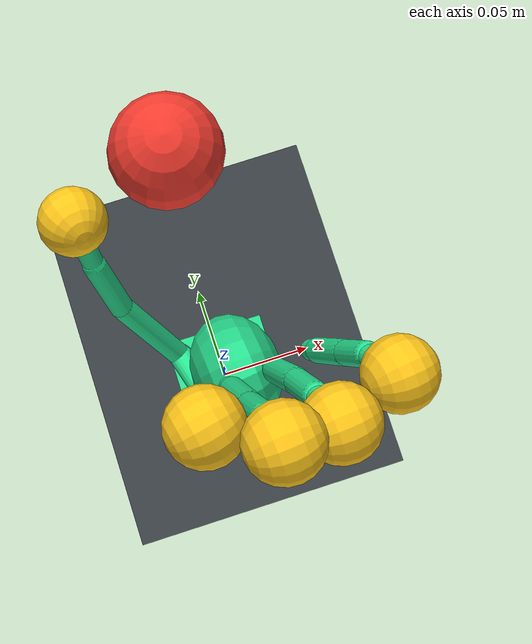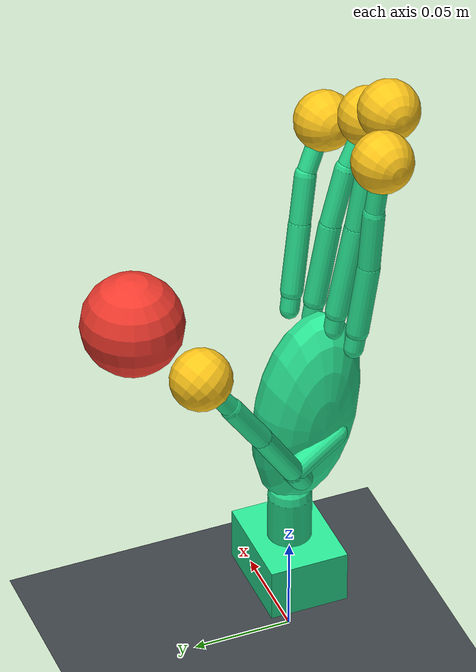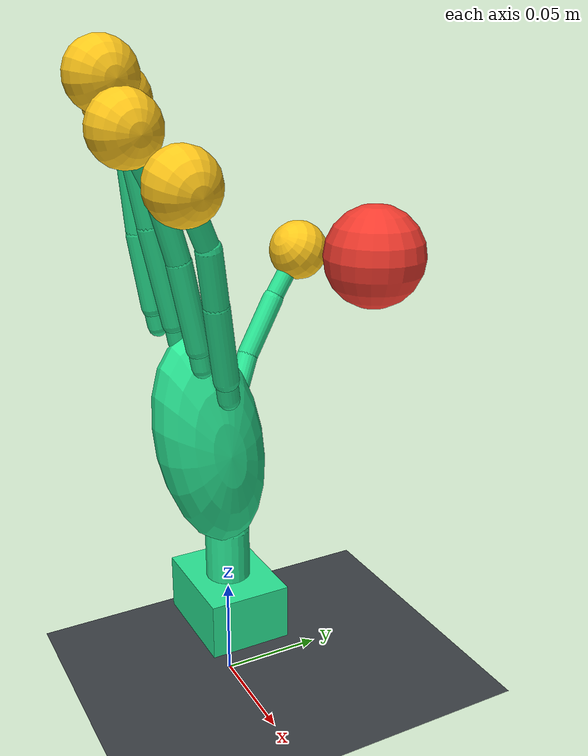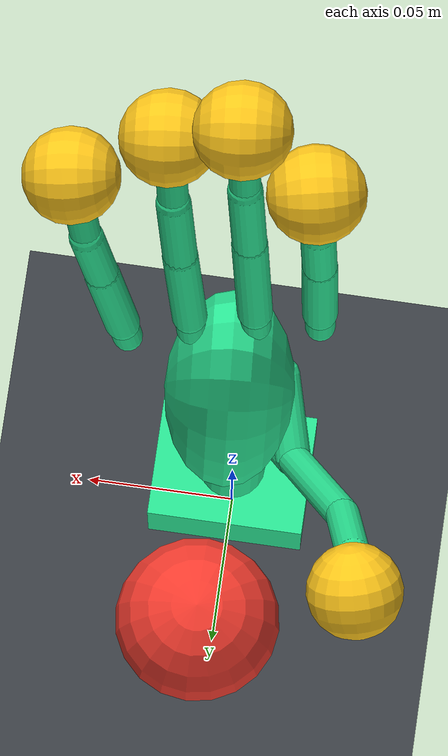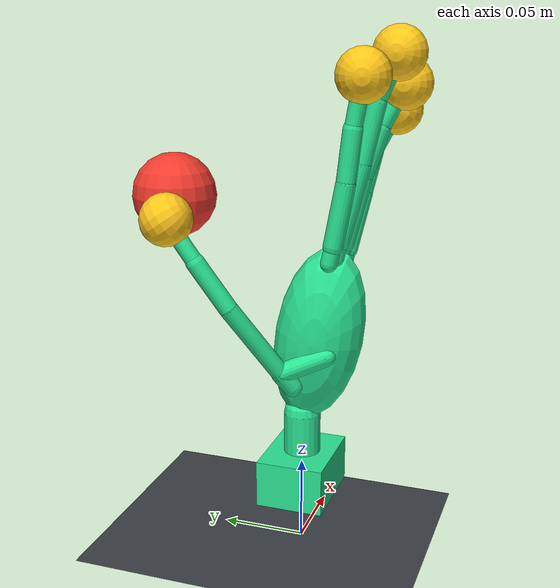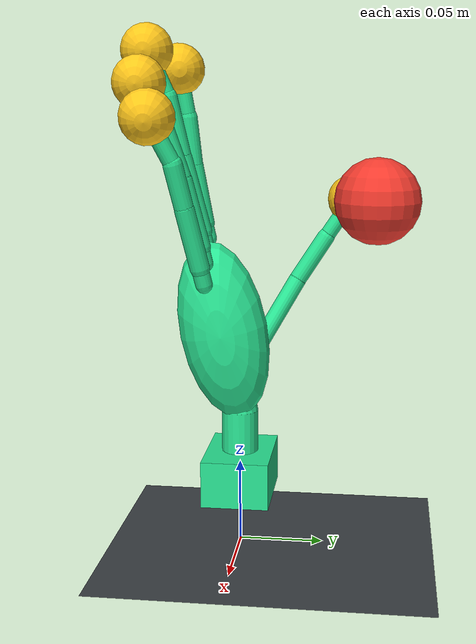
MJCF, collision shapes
<?xml version="1.0" encoding="utf-8"?>
<mujoco model="hand_stage1_export4_palmar_ypos_collision_candidate_scene">
  <include file="hand_stage1_export4_palmar_ypos_collision_candidate.xml"/>
  <visual>
    <global azimuth="145" elevation="-25" offwidth="1280" offheight="900"/>
  </visual>
  <asset>
    <texture type="2d" name="palmar_ypos_candidate_ground_checker" builtin="checker"
      rgb1="0.18 0.20 0.22" rgb2="0.28 0.30 0.32" width="300" height="300"/>
    <material name="palmar_ypos_candidate_ground_mat" texture="palmar_ypos_candidate_ground_checker"
      texrepeat="4 4" reflectance="0.15"/>
  </asset>
  <worldbody>
    <light pos="0 -0.3 0.8" dir="0 0 -1" directional="true"/>
    <geom name="ground" type="plane" pos="0 0 0" size="0.4 0.4 0.02"
      material="palmar_ypos_candidate_ground_mat" contype="1" conaffinity="3"/>
    <body name="ball" pos="0.0 0.08 0.21">
      <freejoint name="ball_freejoint"/>
      <geom name="ball_geom" type="sphere" size="0.025" rgba="0.95 0.23 0.18 1"
        mass="0.03" friction="0.8 0.05 0.001" condim="3" contype="2" conaffinity="1"/>
    </body>
  </worldbody>
</mujoco>

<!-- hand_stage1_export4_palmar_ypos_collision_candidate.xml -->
<mujoco model="hand_stage1_export4_palmar_ypos_collision_candidate">
  <compiler angle="radian" meshdir="../meshes_export4" autolimits="true" />
  <option timestep="0.002" gravity="0 0 -9.81" />
  <visual>
    <global azimuth="145" elevation="-25" offwidth="1280" offheight="900" />
  </visual>
  <default>
    <joint damping="0.08" armature="0.0001" />
    <geom solref="0.01 1" solimp="0.9 0.95 0.001" />
  </default>
  <statistic center="0.005 0.02 0.18" extent="0.24" />
  <asset>
    <mesh name="hand_base_link_mesh" file="hand_base_link.STL" scale="1 1 1" />
    <mesh name="wrist_middle_link_mesh" file="wrist_middle_link.STL" scale="1 1 1" />
    <mesh name="palm_link_mesh" file="palm_link.STL" scale="1 1 1" />
    <mesh name="index_mcp_flex_link_mesh" file="index_mcp_flex_link.STL" scale="1 1 1" />
    <mesh name="index_proximal_phalanx_link_mesh" file="index_proximal_phalanx_link.STL" scale="1 1 1" />
    <mesh name="index_proximal_inter_link_mesh" file="index_proximal_inter_link.STL" scale="1 1 1" />
    <mesh name="index_distal_link_mesh" file="index_distal_link.STL" scale="1 1 1" />
    <mesh name="middle_mcp_flex_link_mesh" file="middle_mcp_flex_link.STL" scale="1 1 1" />
    <mesh name="middle_proximal_phalanx_link_mesh" file="middle_proximal_phalanx_link.STL" scale="1 1 1" />
    <mesh name="middle_proximal_inter_link_mesh" file="middle_proximal_inter_link.STL" scale="1 1 1" />
    <mesh name="middle_distal_link_mesh" file="middle_distal_link.STL" scale="1 1 1" />
    <mesh name="ring_mcp_flex_link_mesh" file="ring_mcp_flex_link.STL" scale="1 1 1" />
    <mesh name="ring_proximal_phalanx_link_mesh" file="ring_proximal_phalanx_link.STL" scale="1 1 1" />
    <mesh name="ring_proximal_inter_link_mesh" file="ring_proximal_inter_link.STL" scale="1 1 1" />
    <mesh name="ring_distal_link_mesh" file="ring_distal_link.STL" scale="1 1 1" />
    <mesh name="little_mcp_flex_link_mesh" file="little_mcp_flex_link.STL" scale="1 1 1" />
    <mesh name="little_proximal_phalanx_link_mesh" file="little_proximal_phalanx_link.STL" scale="1 1 1" />
    <mesh name="little_proximal_inter_link_mesh" file="little_proximal_inter_link.STL" scale="1 1 1" />
    <mesh name="little_distal_link_mesh" file="little_distal_link.STL" scale="1 1 1" />
    <mesh name="thumb_root_connector_link_mesh" file="thumb_root_connector_link.STL" scale="1 1 1" />
    <mesh name="thumb_trapezium1_link_mesh" file="thumb_trapezium1_link.STL" scale="1 1 1" />
    <mesh name="thumb_metacarpal_link_mesh" file="thumb_metacarpal_link.STL" scale="1 1 1" />
    <mesh name="thumb_proximal_link_mesh" file="thumb_proximal_link.STL" scale="1 1 1" />
    <mesh name="thumb_distal_link_mesh" file="thumb_distal_link.STL" scale="1 1 1" />
  </asset>
  <worldbody>
    <body name="hand_base_link" pos="0 0 0.05">
      <inertial pos="0 0 0" mass="0.012576523" diaginertia="1e-5 1e-5 1e-5" />
      <geom name="hand_base_link_export4_visual" type="mesh" mesh="hand_base_link_mesh" pos="0 0 0" quat="1 0 0 0" rgba="0.792156862745098 0.819607843137255 0.933333333333333 1" contype="0" conaffinity="0" group="2" />
      <geom name="hand_base_link_collision_proxy" type="box" pos="0 0 -0.006" size="0.026 0.020 0.014" rgba="0.16 0.90 0.58 0.34" contype="1" conaffinity="2" group="3" />
      <body name="wrist_middle_link" pos="0 0 0.015" quat="0.021734468 0.031497148 -0.70640493 -0.70677267">
        <joint name="wrist_1_joint" type="hinge" axis="0 0 -1" limited="true" range="-0.8 0.8" damping="0.08" armature="0.0001" />
        <inertial pos="0 0 0" mass="0.010062493" diaginertia="1e-5 1e-5 1e-5" />
        <geom name="wrist_middle_link_export4_visual" type="mesh" mesh="wrist_middle_link_mesh" pos="0 0 0" quat="1 0 0 0" rgba="0.792156862745098 0.819607843137255 0.933333333333333 1" contype="0" conaffinity="0" group="2" />
        <geom name="wrist_middle_link_collision_proxy" type="capsule" fromto="0 -0.018 0 0 0.018 0" size="0.011" rgba="0.16 0.90 0.58 0.34" contype="1" conaffinity="2" group="3" />
        <body name="palm_link" pos="-0.0008 0.020263937 -0.0007" quat="0.7042091 -0.063949537 -0.7042091 0.063949537">
          <joint name="wrist_2_joint" type="hinge" axis="0 0 -1" limited="true" range="-0.8 0.8" damping="0.08" armature="0.0001" />
          <inertial pos="0 0 0" mass="0.14137095" diaginertia="1e-5 1e-5 1e-5" />
          <geom name="palm_link_export4_visual" type="mesh" mesh="palm_link_mesh" pos="0 0 0" quat="1 0 0 0" rgba="0.792156862745098 0.819607843137255 0.933333333333333 1" contype="0" conaffinity="0" group="2" />
          <geom name="palm_link_collision_proxy_ellipsoid" type="ellipsoid" pos="0 0.048 0.002" size="0.026 0.054 0.021" rgba="0.16 0.90 0.58 0.30" contype="1" conaffinity="2" group="3" friction="0.9 0.04 0.001" />
          <body name="index_mcp_flex_link" pos="-0.0014332629 0.1003371 -0.024802645" quat="0.70710678 0 0.70710678 0">
            <joint name="index_mcp_flex_joint" type="hinge" axis="0 0 -1" limited="true" range="-0.3 0.18" damping="0.08" armature="0.0001" />
            <inertial pos="0 0 0" mass="0.0017548052" diaginertia="1e-5 1e-5 1e-5" />
            <geom name="index_mcp_flex_link_export4_visual" type="mesh" mesh="index_mcp_flex_link_mesh" pos="0 0 0" quat="1 0 0 0" rgba="0.792156862745098 0.819607843137255 0.933333333333333 1" contype="0" conaffinity="0" group="2" />
            <geom name="index_mcp_flex_link_collision_proxy" type="capsule" fromto="0 0 0 -0.00051676254 0.0097416976 -0.00026673708" size="0.0048" rgba="0.16 0.90 0.58 0.34" contype="1" conaffinity="2" group="3" friction="0.9 0.04 0.001" />
            <body name="index_proximal_phalanx_link" pos="-0.00051676254 0.0097416976 -0.00026673708" quat="0.70685854 -0.018735 0.70685854 0.018735">
              <joint name="index_mcp_abd_joint" type="hinge" axis="0 0 -1" limited="true" range="-0.78 0.08" damping="0.08" armature="0.0001" />
              <inertial pos="0 0 0" mass="0.0070310696" diaginertia="1e-5 1e-5 1e-5" />
              <geom name="index_proximal_phalanx_link_export4_visual" type="mesh" mesh="index_proximal_phalanx_link_mesh" pos="0 0 0" quat="1 0 0 0" rgba="0.792156862745098 0.819607843137255 0.933333333333333 1" contype="0" conaffinity="0" group="2" />
              <geom name="index_proximal_phalanx_link_collision_proxy" type="capsule" fromto="0 0 0 -0.00021096449 0.034999364 0.00025" size="0.0056" rgba="0.16 0.90 0.58 0.34" contype="1" conaffinity="2" group="3" friction="0.9 0.04 0.001" />
              <body name="index_proximal_inter_link" pos="-0.00021096449 0.034999364 0.00025" quat="0.97605087 0.012185394 0.058843732 0.20907807">
                <joint name="index_pip_joint" type="hinge" axis="0.109773553624728 -0.0483929965230635 -0.992777862772996" limited="true" range="-1.1 0.04" damping="0.08" armature="0.0001" />
                <inertial pos="0 0 0" mass="0.0059704873" diaginertia="1e-5 1e-5 1e-5" />
                <geom name="index_proximal_inter_link_export4_visual" type="mesh" mesh="index_proximal_inter_link_mesh" pos="0 0 0" quat="1 0 0 0" rgba="0.792156862745098 0.819607843137255 0.933333333333333 1" contype="0" conaffinity="0" group="2" />
                <geom name="index_proximal_inter_link_collision_proxy" type="capsule" fromto="0 0 0 0.0097266332 0.027252107 -0.00045436552" size="0.0054" rgba="0.16 0.90 0.58 0.34" contype="1" conaffinity="2" group="3" friction="0.9 0.04 0.001" />
                <body name="index_distal_link" pos="0.0097266332 0.027252107 -0.00045436552" quat="1 0 0 0">
                  <joint name="index_dip_joint" type="hinge" axis="0 0 -1" limited="true" range="-0.66 0.04" damping="0.08" armature="0.0001" />
                  <inertial pos="0 0 0" mass="0.0053528415" diaginertia="1e-5 1e-5 1e-5" />
                  <geom name="index_distal_link_export4_visual" type="mesh" mesh="index_distal_link_mesh" pos="0 0 0" quat="1 0 0 0" rgba="0.792156862745098 0.819607843137255 0.933333333333333 1" contype="0" conaffinity="0" group="2" />
                  <geom name="index_distal_link_collision_proxy" type="capsule" fromto="0 0 0 0.011092007 0.025709199 -6.7060969e-05" size="0.0048" rgba="0.16 0.90 0.58 0.34" contype="1" conaffinity="2" group="3" friction="0.9 0.04 0.001" />
                  <geom name="index_tip_collision_proxy_sphere" type="sphere" pos="0.011092007 0.025709199 -6.7060969e-05" size="0.015000" rgba="1.0 0.78 0.10 0.42" contype="1" conaffinity="2" group="3" friction="0.9 0.04 0.001" />
                  <site name="index_tip_site" pos="0.011092007 0.025709199 -6.7060969e-05" size="0.008" rgba="0.10 0.55 1.0 1" type="sphere" />
                </body>
              </body>
            </body>
          </body>
          <body name="little_mcp_flex_link" pos="-0.0014332629 0.082348214 0.035197355" quat="0.70710678 0 0.70710678 0">
            <joint name="little_mcp_flex_joint" type="hinge" axis="0 0 -1" limited="true" range="-0.28 0.16" damping="0.08" armature="0.0001" />
            <inertial pos="0 0 0" mass="0.0017548056" diaginertia="1e-5 1e-5 1e-5" />
            <geom name="little_mcp_flex_link_export4_visual" type="mesh" mesh="little_mcp_flex_link_mesh" pos="0 0 0" quat="1 0 0 0" rgba="0.792156862745098 0.819607843137255 0.933333333333333 1" contype="0" conaffinity="0" group="2" />
            <geom name="little_mcp_flex_link_collision_proxy" type="capsule" fromto="0 0 0 -0.0018088145 0.0095862352 -0.00026673708" size="0.0048" rgba="0.16 0.90 0.58 0.34" contype="1" conaffinity="2" group="3" friction="0.9 0.04 0.001" />
            <body name="little_proximal_phalanx_link" pos="-0.0018088145 0.0095862352 -0.00026673708" quat="0.4512713 0.4512713 0.54438425 0.54438425">
              <joint name="little_mcp_abd_joint" type="hinge" axis="0 0 -1" limited="true" range="-0.76 0.08" damping="0.08" armature="0.0001" />
              <inertial pos="0 0 0" mass="0.0070532455" diaginertia="1e-5 1e-5 1e-5" />
              <geom name="little_proximal_phalanx_link_export4_visual" type="mesh" mesh="little_proximal_phalanx_link_mesh" pos="0 0 0" quat="1 0 0 0" rgba="0.792156862745098 0.819607843137255 0.933333333333333 1" contype="0" conaffinity="0" group="2" />
              <geom name="little_proximal_phalanx_link_collision_proxy" type="capsule" fromto="0 0 0 0.034983 -0.0010805 -0.0003" size="0.0056" rgba="0.16 0.90 0.58 0.34" contype="1" conaffinity="2" group="3" friction="0.9 0.04 0.001" />
              <body name="little_proximal_inter_link" pos="0.034983 -0.0010805 -0.0003" quat="0.70710548 0 0 -0.70710808">
                <joint name="little_pip_joint" type="hinge" axis="0 0 -1" limited="true" range="-1 0.04" damping="0.08" armature="0.0001" />
                <inertial pos="0 0 0" mass="0.0050879458" diaginertia="1e-5 1e-5 1e-5" />
                <geom name="little_proximal_inter_link_export4_visual" type="mesh" mesh="little_proximal_inter_link_mesh" pos="0 0 0" quat="1 0 0 0" rgba="0.792156862745098 0.819607843137255 0.933333333333333 1" contype="0" conaffinity="0" group="2" />
                <geom name="little_proximal_inter_link_collision_proxy" type="capsule" fromto="0 0 0 0.00077177 0.024988 -0.0002" size="0.0054" rgba="0.16 0.90 0.58 0.34" contype="1" conaffinity="2" group="3" friction="0.9 0.04 0.001" />
                <body name="little_distal_link" pos="0.00077177 0.024988 -0.0002" quat="0.70710548 0 0 0.70710808">
                  <joint name="little_dip_joint" type="hinge" axis="0 0 -1" limited="true" range="-0.62 0.04" damping="0.08" armature="0.0001" />
                  <inertial pos="0 0 0" mass="0.0053522317" diaginertia="1e-5 1e-5 1e-5" />
                  <geom name="little_distal_link_export4_visual" type="mesh" mesh="little_distal_link_mesh" pos="0 0 0" quat="1 0 0 0" rgba="0.792156862745098 0.819607843137255 0.933333333333333 1" contype="0" conaffinity="0" group="2" />
                  <geom name="little_distal_link_collision_proxy" type="capsule" fromto="0 0 0 0.026961146 -0.0075560895 -4.619485e-05" size="0.0048" rgba="0.16 0.90 0.58 0.34" contype="1" conaffinity="2" group="3" friction="0.9 0.04 0.001" />
                  <geom name="little_tip_collision_proxy_sphere" type="sphere" pos="0.026961146 -0.0075560895 -4.619485e-05" size="0.015000" rgba="1.0 0.78 0.10 0.42" contype="1" conaffinity="2" group="3" friction="0.9 0.04 0.001" />
                  <site name="little_tip_site" pos="0.026961146 -0.0075560895 -4.619485e-05" size="0.008" rgba="0.10 0.55 1.0 1" type="sphere" />
                </body>
              </body>
            </body>
          </body>
          <body name="middle_mcp_flex_link" pos="-0.0014332629 0.097567248 -0.0048026451" quat="0.70710678 0 0.70710678 0">
            <joint name="middle_mcp_flex_joint" type="hinge" axis="0 0 -1" limited="true" range="-0.3 0.18" damping="0.08" armature="0.0001" />
            <inertial pos="0 0 0" mass="0.0017548053" diaginertia="1e-5 1e-5 1e-5" />
            <geom name="middle_mcp_flex_link_export4_visual" type="mesh" mesh="middle_mcp_flex_link_mesh" pos="0 0 0" quat="1 0 0 0" rgba="0.792156862745098 0.819607843137255 0.933333333333333 1" contype="0" conaffinity="0" group="2" />
            <geom name="middle_mcp_flex_link_collision_proxy" type="capsule" fromto="0 0 0 -0.00064254397 0.0097342104 -0.00026673708" size="0.0048" rgba="0.16 0.90 0.58 0.34" contype="1" conaffinity="2" group="3" friction="0.9 0.04 0.001" />
            <body name="middle_proximal_phalanx_link" pos="-0.00064254397 0.0097342104 -0.00026673708" quat="0.48325317 0.48325317 0.51620381 0.51620381">
              <joint name="middle_mcp_abd_joint" type="hinge" axis="0 0 -1" limited="true" range="-0.86 0.08" damping="0.08" armature="0.0001" />
              <inertial pos="0 0 0" mass="0.0090532579" diaginertia="1e-5 1e-5 1e-5" />
              <geom name="middle_proximal_phalanx_link_export4_visual" type="mesh" mesh="middle_proximal_phalanx_link_mesh" pos="0 0 0" quat="1 0 0 0" rgba="0.792156862745098 0.819607843137255 0.933333333333333 1" contype="0" conaffinity="0" group="2" />
              <geom name="middle_proximal_phalanx_link_collision_proxy" type="capsule" fromto="0 0 0 0.044915416 -0.0027577974 -0.0003" size="0.0056" rgba="0.16 0.90 0.58 0.34" contype="1" conaffinity="2" group="3" friction="0.9 0.04 0.001" />
              <body name="middle_proximal_inter_link" pos="0.044915416 -0.0027577974 -0.0003" quat="1 0 0 0">
                <joint name="middle_pip_joint" type="hinge" axis="0 0 -1" limited="true" range="-1.16 0.04" damping="0.08" armature="0.0001" />
                <inertial pos="0 0 0" mass="0.0073249127" diaginertia="1e-5 1e-5 1e-5" />
                <geom name="middle_proximal_inter_link_export4_visual" type="mesh" mesh="middle_proximal_inter_link_mesh" pos="0 0 0" quat="1 0 0 0" rgba="0.792156862745098 0.819607843137255 0.933333333333333 1" contype="0" conaffinity="0" group="2" />
                <geom name="middle_proximal_inter_link_collision_proxy" type="capsule" fromto="0 0 0 0.03498049 -0.0011684823 -0.0002" size="0.0054" rgba="0.16 0.90 0.58 0.34" contype="1" conaffinity="2" group="3" friction="0.9 0.04 0.001" />
                <body name="middle_distal_link" pos="0.03498049 -0.0011684823 -0.0002" quat="1 0 0 0">
                  <joint name="middle_dip_joint" type="hinge" axis="0 0 -1" limited="true" range="-0.7 0.04" damping="0.08" armature="0.0001" />
                  <inertial pos="0 0 0" mass="0.0053530376" diaginertia="1e-5 1e-5 1e-5" />
                  <geom name="middle_distal_link_export4_visual" type="mesh" mesh="middle_distal_link_mesh" pos="0 0 0" quat="1 0 0 0" rgba="0.792156862745098 0.819607843137255 0.933333333333333 1" contype="0" conaffinity="0" group="2" />
                  <geom name="middle_distal_link_collision_proxy" type="capsule" fromto="0 0 0 0.027301483 -0.006215095 -4.054405e-05" size="0.0048" rgba="0.16 0.90 0.58 0.34" contype="1" conaffinity="2" group="3" friction="0.9 0.04 0.001" />
                  <geom name="middle_tip_collision_proxy_sphere" type="sphere" pos="0.027301483 -0.006215095 -4.054405e-05" size="0.015000" rgba="1.0 0.78 0.10 0.42" contype="1" conaffinity="2" group="3" friction="0.9 0.04 0.001" />
                  <site name="middle_tip_site" pos="0.027301483 -0.006215095 -4.054405e-05" size="0.008" rgba="0.10 0.55 1.0 1" type="sphere" />
                </body>
              </body>
            </body>
          </body>
          <body name="ring_mcp_flex_link" pos="-0.0014333 0.090989 0.015197" quat="0.70710548 0 0.70710808 0">
            <joint name="ring_mcp_flex_joint" type="hinge" axis="-0.996 -0.089367 0" limited="true" range="-0.3 0.18" damping="0.08" armature="0.0001" />
            <inertial pos="0 0 0" mass="0.0017548053" diaginertia="1e-5 1e-5 1e-5" />
            <geom name="ring_mcp_flex_link_export4_visual" type="mesh" mesh="ring_mcp_flex_link_mesh" pos="0 0 0" quat="1 0 0 0" rgba="0.792156862745098 0.819607843137255 0.933333333333333 1" contype="0" conaffinity="0" group="2" />
            <geom name="ring_mcp_flex_link_collision_proxy" type="capsule" fromto="0 0 0 -0.00087180699 0.0097163608 -0.00026673708" size="0.0048" rgba="0.16 0.90 0.58 0.34" contype="1" conaffinity="2" group="3" friction="0.9 0.04 0.001" />
            <body name="ring_proximal_phalanx_link" pos="-0.00087180699 0.0097163608 -0.00026673708" quat="0.47713555 0.47713555 0.52186365 0.52186365">
              <joint name="ring_mcp_abd_joint" type="hinge" axis="0 0 -1" limited="true" range="-0.84 0.08" damping="0.08" armature="0.0001" />
              <inertial pos="0 0 0" mass="0.0079217428" diaginertia="1e-5 1e-5 1e-5" />
              <geom name="ring_proximal_phalanx_link_export4_visual" type="mesh" mesh="ring_proximal_phalanx_link_mesh" pos="0 0 0" quat="1 0 0 0" rgba="0.792156862745098 0.819607843137255 0.933333333333333 1" contype="0" conaffinity="0" group="2" />
              <geom name="ring_proximal_phalanx_link_collision_proxy" type="capsule" fromto="0 0 0 0.039933 -0.0023102 -0.0003" size="0.0056" rgba="0.16 0.90 0.58 0.34" contype="1" conaffinity="2" group="3" friction="0.9 0.04 0.001" />
              <body name="ring_proximal_inter_link" pos="0.039933 -0.0023102 -0.0003" quat="0.70710548 0 0 -0.70710808">
                <joint name="ring_pip_joint" type="hinge" axis="0 0 -1" limited="true" range="-1.1 0.04" damping="0.08" armature="0.0001" />
                <inertial pos="0 0 0" mass="0.0062089763" diaginertia="1e-5 1e-5 1e-5" />
                <geom name="ring_proximal_inter_link_export4_visual" type="mesh" mesh="ring_proximal_inter_link_mesh" pos="0 0 0" quat="1 0 0 0" rgba="0.792156862745098 0.819607843137255 0.933333333333333 1" contype="0" conaffinity="0" group="2" />
                <geom name="ring_proximal_inter_link_collision_proxy" type="capsule" fromto="0 0 0 0.0039742641 0.029735589 -0.0002" size="0.0054" rgba="0.16 0.90 0.58 0.34" contype="1" conaffinity="2" group="3" friction="0.9 0.04 0.001" />
                <body name="ring_distal_link" pos="0.0039742641 0.029735589 -0.0002" quat="0.70710678 0 0 0.70710678">
                  <joint name="ring_dip_joint" type="hinge" axis="0 0 -1" limited="true" range="-0.68 0.04" damping="0.08" armature="0.0001" />
                  <inertial pos="0 0 0" mass="0.0053519063" diaginertia="1e-5 1e-5 1e-5" />
                  <geom name="ring_distal_link_export4_visual" type="mesh" mesh="ring_distal_link_mesh" pos="0 0 0" quat="1 0 0 0" rgba="0.792156862745098 0.819607843137255 0.933333333333333 1" contype="0" conaffinity="0" group="2" />
                  <geom name="ring_distal_link_collision_proxy" type="capsule" fromto="0 0 0 0.026733217 -0.0083266507 -4.4813101e-05" size="0.0048" rgba="0.16 0.90 0.58 0.34" contype="1" conaffinity="2" group="3" friction="0.9 0.04 0.001" />
                  <geom name="ring_tip_collision_proxy_sphere" type="sphere" pos="0.026733217 -0.0083266507 -4.4813101e-05" size="0.015000" rgba="1.0 0.78 0.10 0.42" contype="1" conaffinity="2" group="3" friction="0.9 0.04 0.001" />
                  <site name="ring_tip_site" pos="0.026733217 -0.0083266507 -4.4813101e-05" size="0.008" rgba="0.10 0.55 1.0 1" type="sphere" />
                </body>
              </body>
            </body>
          </body>
          <body name="thumb_root_connector_link" pos="0.0064687769 0.019331857 -0.016418226" quat="0.24714875 -0.24714875 -0.53303917 0.77052205">
            <inertial pos="0 0 0" mass="0.0018183" diaginertia="1e-5 1e-5 1e-5" />
            <geom name="thumb_root_connector_link_export4_visual" type="mesh" mesh="thumb_root_connector_link_mesh" pos="0 0 0" quat="1 0 0 0" rgba="0.79216 0.81961 0.93333 1" contype="0" conaffinity="0" group="2" />
            <geom name="thumb_root_connector_link_collision_proxy" type="capsule" fromto="0 0 0 -6.3364e-05 0.00012377 -0.011586" size="0.0058" rgba="0.16 0.90 0.58 0.34" contype="1" conaffinity="2" group="3" friction="0.9 0.04 0.001" />
            <body name="thumb_trapezium1_link" pos="-6.3364e-05 0.00012377 -0.011586" quat="-0.17341937 -0.36522812 -0.60548304 0.68551034">
              <joint name="thumb_cmc_abd_joint" type="hinge" axis="0 0 -1" limited="true" range="-1.05 1.05" damping="0.08" armature="0.0001" />
              <inertial pos="0 0 0" mass="0.001" diaginertia="1e-5 1e-5 1e-5" />
              <geom name="thumb_trapezium1_link_export4_visual" type="mesh" mesh="thumb_trapezium1_link_mesh" pos="0 0 0" quat="1 0 0 0" rgba="0.792156862745098 0.819607843137255 0.933333333333333 1" contype="0" conaffinity="0" group="2" />
              <geom name="thumb_trapezium1_link_collision_proxy" type="capsule" fromto="0 0 0 -0.023394532 0.015361599 -0.00084684352" size="0.0058" rgba="0.16 0.90 0.58 0.34" contype="1" conaffinity="2" group="3" friction="0.9 0.04 0.001" />
              <body name="thumb_metacarpal_link" pos="0 0 0" quat="0.60495967 -0.15982858 -0.68880723 -0.36609183">
                <joint name="thumb_cmc_joint" type="hinge" axis="0 0 -1" limited="true" range="-0.95 0.95" damping="0.08" armature="0.0001" />
                <inertial pos="0 0 0" mass="0.012375" diaginertia="1e-5 1e-5 1e-5" />
                <geom name="thumb_metacarpal_link_export4_visual" type="mesh" mesh="thumb_metacarpal_link_mesh" pos="0 0 0" quat="1 0 0 0" rgba="0.79216 0.81961 0.93333 1" contype="0" conaffinity="0" group="2" />
                <geom name="thumb_metacarpal_link_collision_proxy" type="capsule" fromto="0 0 0 -0.016224 0.049404 -0.000175" size="0.0054" rgba="0.16 0.90 0.58 0.34" contype="1" conaffinity="2" group="3" friction="0.9 0.04 0.001" />
                <body name="thumb_proximal_link" pos="-0.016224 0.049404 -0.000175" quat="1 0 0 0">
                  <joint name="thumb_mcp_joint" type="hinge" axis="0 0 -1" limited="true" range="-0.1 1.2" damping="0.08" armature="0.0001" />
                  <inertial pos="0 0 0" mass="0.0062816" diaginertia="1e-5 1e-5 1e-5" />
                  <geom name="thumb_proximal_link_export4_visual" type="mesh" mesh="thumb_proximal_link_mesh" pos="0 0 0" quat="1 0 0 0" rgba="0.79216 0.81961 0.93333 1" contype="0" conaffinity="0" group="2" />
                  <geom name="thumb_proximal_link_collision_proxy" type="capsule" fromto="0 0 0 -0.0033345 0.031826 -0.000105" size="0.0054" rgba="0.16 0.90 0.58 0.34" contype="1" conaffinity="2" group="3" friction="0.9 0.04 0.001" />
                  <body name="thumb_distal_link" pos="-0.0033345 0.031826 -0.000105" quat="-3.6732051e-06 -0 0 1">
                    <joint name="thumb_ip_joint" type="hinge" axis="0 0 1" limited="true" range="-0.85 0.05" damping="0.08" armature="0.0001" />
                    <inertial pos="0 0 0" mass="0.0073168" diaginertia="1e-5 1e-5 1e-5" />
                    <geom name="thumb_distal_link_export4_visual" type="mesh" mesh="thumb_distal_link_mesh" pos="0 0 0" quat="1 0 0 0" rgba="0.79216 0.81961 0.93333 1" contype="0" conaffinity="0" group="2" />
                    <geom name="thumb_distal_link_collision_proxy" type="capsule" fromto="0 0 0 0.00052061935 -0.027995157 -1.2280723e-05" size="0.0048" rgba="0.16 0.90 0.58 0.34" contype="1" conaffinity="2" group="3" friction="0.9 0.04 0.001" />
                    <geom name="thumb_tip_collision_proxy_sphere" type="sphere" pos="0.00052061935 -0.027995157 -1.2280723e-05" size="0.015000" rgba="1.0 0.78 0.10 0.42" contype="1" conaffinity="2" group="3" friction="0.9 0.04 0.001" />
                    <site name="thumb_tip_site" pos="0.00052061935 -0.027995157 -1.2280723e-05" size="0.008" rgba="0.10 0.55 1.0 1" type="sphere" />
                  </body>
                </body>
              </body>
            </body>
          </body>
        </body>
      </body>
    </body>
  </worldbody>
  <actuator>
    <position name="wrist_1_joint_pos" joint="wrist_1_joint" kp="5" ctrllimited="true" ctrlrange="-0.8 0.8" />
    <position name="wrist_2_joint_pos" joint="wrist_2_joint" kp="5" ctrllimited="true" ctrlrange="-0.8 0.8" />
    <position name="index_mcp_flex_joint_pos" joint="index_mcp_flex_joint" kp="3" ctrllimited="true" ctrlrange="-0.3 0.18" />
    <position name="index_mcp_abd_joint_pos" joint="index_mcp_abd_joint" kp="3" ctrllimited="true" ctrlrange="-0.78 0.08" />
    <position name="index_pip_joint_pos" joint="index_pip_joint" kp="2" ctrllimited="true" ctrlrange="-1.1 0.04" />
    <position name="index_dip_joint_pos" joint="index_dip_joint" kp="2" ctrllimited="true" ctrlrange="-0.66 0.04" />
    <position name="middle_mcp_flex_joint_pos" joint="middle_mcp_flex_joint" kp="3" ctrllimited="true" ctrlrange="-0.3 0.18" />
    <position name="middle_mcp_abd_joint_pos" joint="middle_mcp_abd_joint" kp="3" ctrllimited="true" ctrlrange="-0.86 0.08" />
    <position name="middle_pip_joint_pos" joint="middle_pip_joint" kp="2" ctrllimited="true" ctrlrange="-1.16 0.04" />
    <position name="middle_dip_joint_pos" joint="middle_dip_joint" kp="2" ctrllimited="true" ctrlrange="-0.7 0.04" />
    <position name="ring_mcp_flex_joint_pos" joint="ring_mcp_flex_joint" kp="3" ctrllimited="true" ctrlrange="-0.3 0.18" />
    <position name="ring_mcp_abd_joint_pos" joint="ring_mcp_abd_joint" kp="3" ctrllimited="true" ctrlrange="-0.84 0.08" />
    <position name="ring_pip_joint_pos" joint="ring_pip_joint" kp="2" ctrllimited="true" ctrlrange="-1.1 0.04" />
    <position name="ring_dip_joint_pos" joint="ring_dip_joint" kp="2" ctrllimited="true" ctrlrange="-0.68 0.04" />
    <position name="little_mcp_flex_joint_pos" joint="little_mcp_flex_joint" kp="3" ctrllimited="true" ctrlrange="-0.28 0.16" />
    <position name="little_mcp_abd_joint_pos" joint="little_mcp_abd_joint" kp="3" ctrllimited="true" ctrlrange="-0.76 0.08" />
    <position name="little_pip_joint_pos" joint="little_pip_joint" kp="2" ctrllimited="true" ctrlrange="-1 0.04" />
    <position name="little_dip_joint_pos" joint="little_dip_joint" kp="2" ctrllimited="true" ctrlrange="-0.62 0.04" />
    <position name="thumb_cmc_abd_joint_pos" joint="thumb_cmc_abd_joint" kp="2" ctrllimited="true" ctrlrange="-1.05 1.05" />
    <position name="thumb_cmc_joint_pos" joint="thumb_cmc_joint" kp="2" ctrllimited="true" ctrlrange="-0.95 0.95" />
    <position name="thumb_mcp_joint_pos" joint="thumb_mcp_joint" kp="3" ctrllimited="true" ctrlrange="-0.1 1.2" />
    <position name="thumb_ip_joint_pos" joint="thumb_ip_joint" kp="2" ctrllimited="true" ctrlrange="-0.85 0.05" />
  </actuator>
</mujoco>
